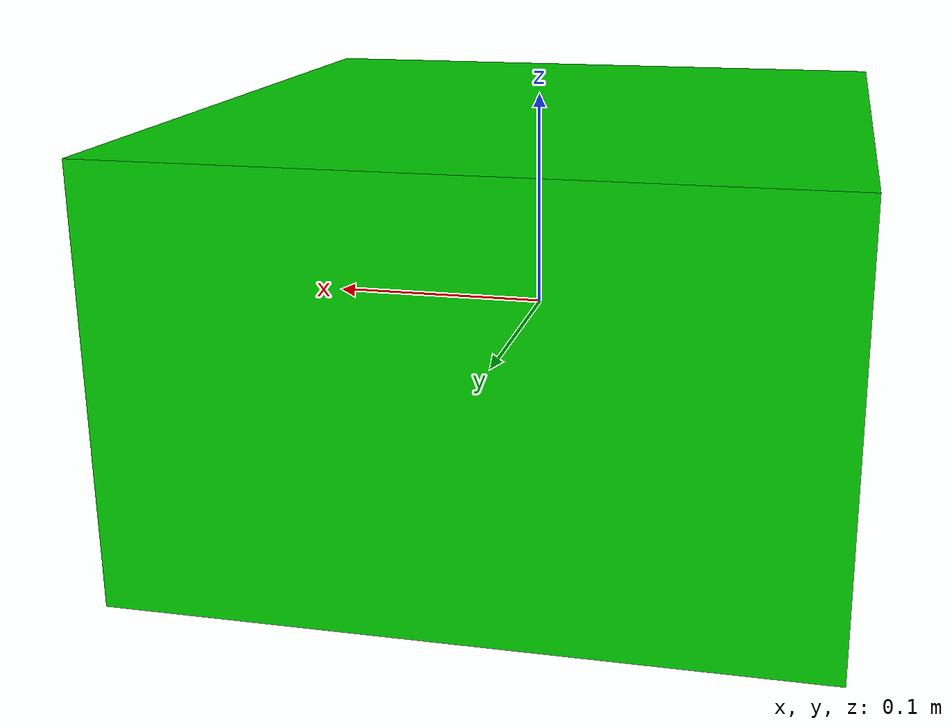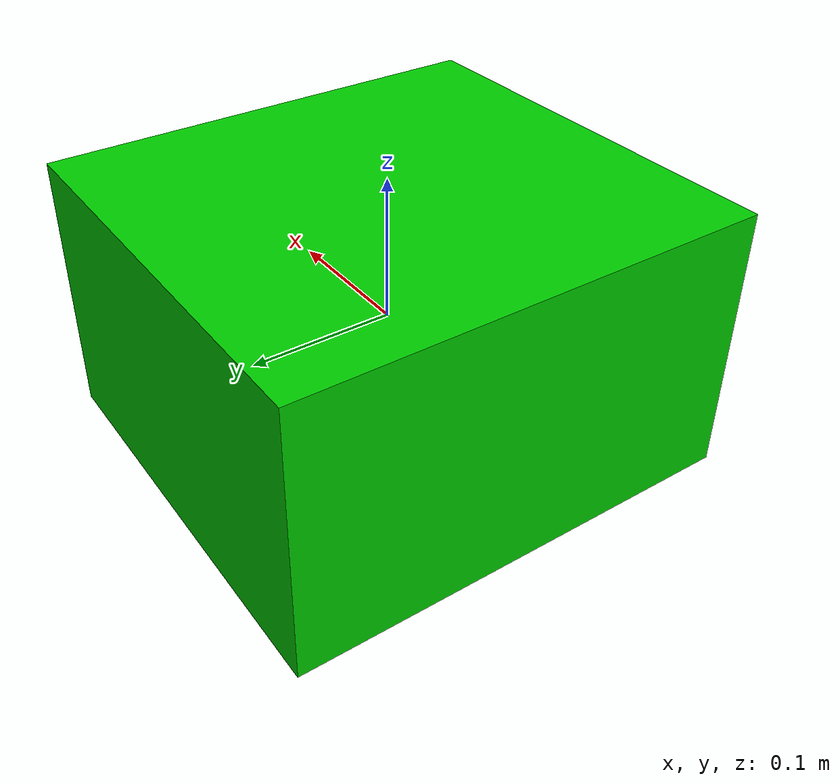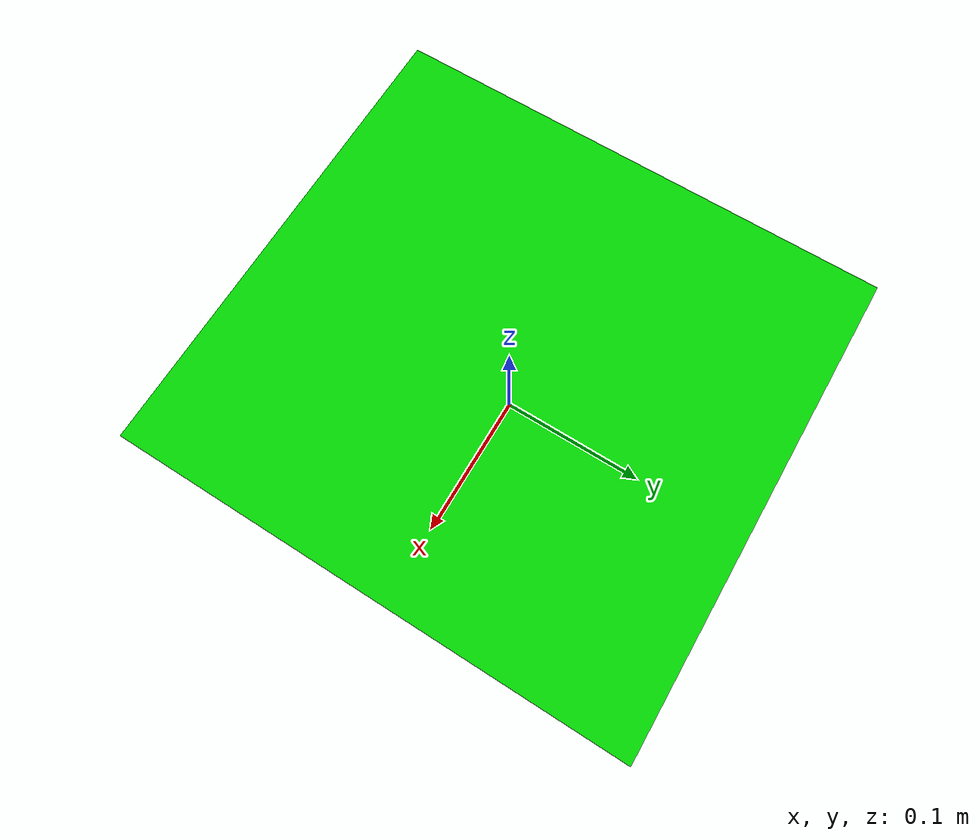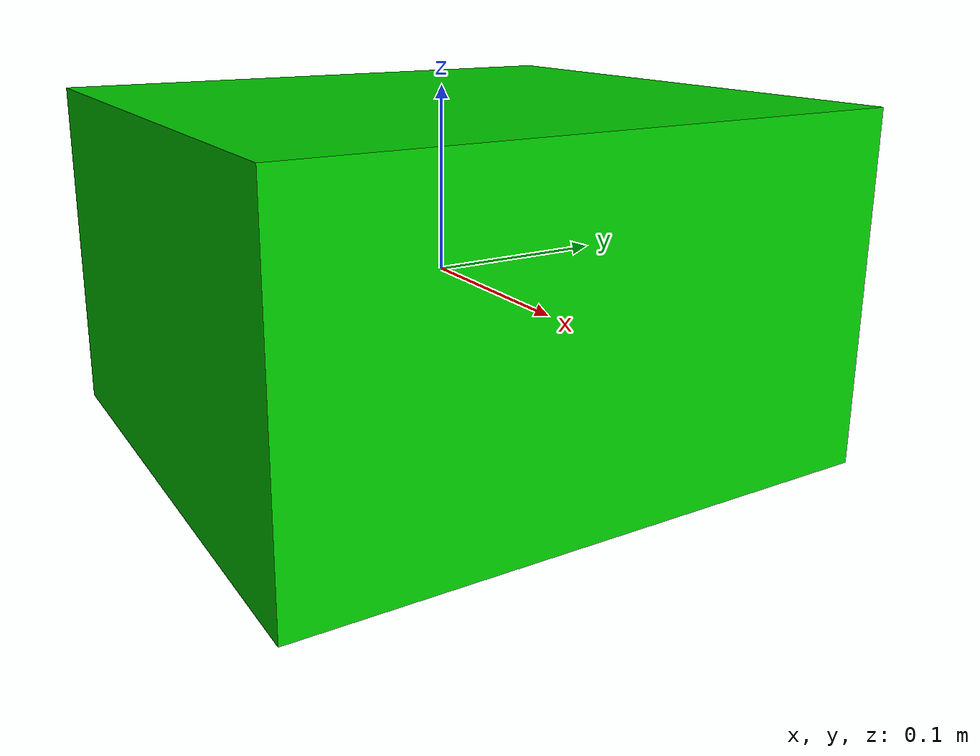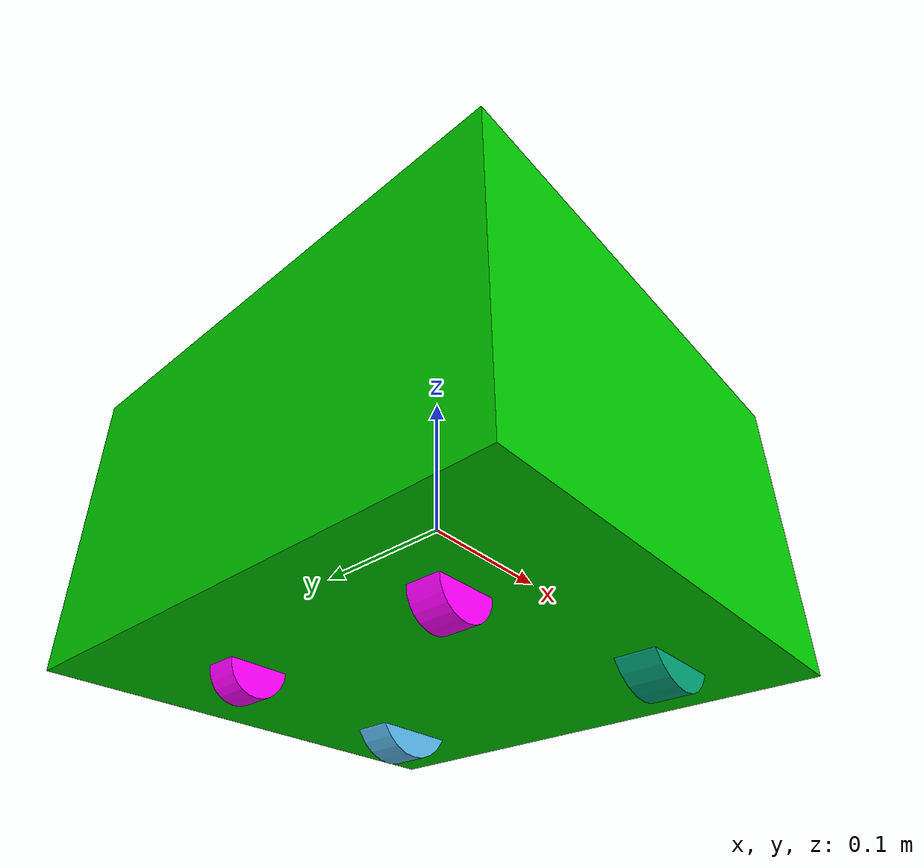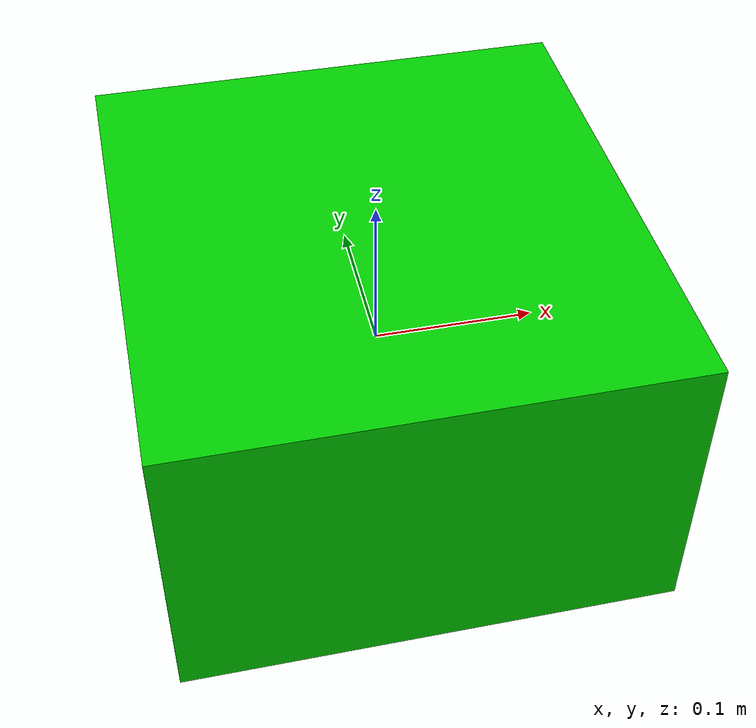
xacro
<?xml version ='1.0'?>
<!-- Author: Eech Hsiao -->
<!-- hsiaoy4@mcmaster.ca -->

<robot name = "robot" xmlns:xacro = "http://www.ros.org/wiki/xacro">

    <xacro:include filename = "$(find macbot_description)/urdf/material.xacro"/>
    <xacro:include filename = "$(find macbot_description)/urdf/robot_textureless.gazebo"/>

    <xacro:property name = "mirror_caster_x"    value = "0.075"     />
    <xacro:property name = "mirror_caster_y"    value = "0.075"     />
    <xacro:property name = "mirror_caster_z"    value = "0.094"     />
    <xacro:property name = "caster_radius"      value = "0.0185"    />
    <xacro:property name = "caster_thickness"   value = "0.02"      />

    <xacro:property name = "mirror_wheel_x"     value = "0.075"     />
    <xacro:property name = "mirror_wheel_y"     value = "0.1"       />
    <xacro:property name = "mirror_wheel_z"     value = "0.079"     />
    <xacro:property name = "wheel_radius"       value = "0.0325"    />
    <xacro:property name = "wheel_thickness"    value = "0.025"     />

    <!-- 0.3 (wide) // 0.322 (long) // 0.188 (height)-->
    <!-- 0.065 (wheel diameter) -->
    <!-- 0.037 (caster diameter) -->

    <!-- LEFT and RIGHT designations taken from POV of Robot -->

    <!-- CHASSIS -->
    <link name = 'base_link'>
        <!-- Giving a little height off the Z axis -->
        <pose>0 0 0.1 0 0 0</pose>

        <inertial>
            <mass value = "15" />       <!-- 20 kgs (arbitrary) -->
            <origin xyz = "0 0 0.1" rpy = "0 0 0" />
            <inertia
                ixx="0.1" ixy="0" ixz="0"
                iyy="0.1" iyz="0"
                izz="0.1"/>
        </inertial>

        <!-- BODY -->
        <collision name = 'base_link_collision'>
            <geometry>
                <box size = "0.3 0.322 0.188"/>
            </geometry>
        </collision>

        <visual name = 'base_link_visual'>
            <origin xyz = "0 0 0" rpy = "0 0 0"/>
            <geometry>
                <box size = "0.3 0.322 0.188"/>
            </geometry>
            <material name = "green"/>
        </visual>

        <!-- LEFT CASTER -->
        <collision name = 'left_caster_collision'>
            <origin xyz ="-${mirror_caster_x} ${mirror_caster_y} -${mirror_caster_z}" rpy = "0 1.5707 1.5707"/>
            <geometry>
                <cylinder radius = "${caster_radius}" length = "${caster_thickness}"/>
            </geometry>

            <surface>
                <friction>
                    <ode>
                        <mu>0</mu>
                        <mu2>0</mu2>
                        <slip1>1.0</slip1>
                        <slip2>1.0</slip2>
                    </ode>
                </friction>
            </surface>
        </collision>

        <visual name = 'left_caster_visual'>
            <origin xyz ="-${mirror_caster_x} ${mirror_caster_y} -${mirror_caster_z}" rpy = "0 1.5707 1.5707"/>
            <geometry>
                <cylinder radius = "${caster_radius}" length = "${caster_thickness}"/>
            </geometry>
            <material name = "magenta"/>
        </visual>

        <!-- RIGHT CASTER -->
        <collision name = 'right_caster_collision'>
            <origin xyz ="-${mirror_caster_x} -${mirror_caster_y} -${mirror_caster_z}" rpy = "0 1.5707 1.5707"/>
            <geometry>
                <cylinder radius = "${caster_radius}" length = "${caster_thickness}"/>
            </geometry>

            <surface>
                <friction>
                    <ode>
                        <mu>0</mu>
                        <mu2>0</mu2>
                        <slip1>1.0</slip1>
                        <slip2>1.0</slip2>
                    </ode>
                </friction>
            </surface>
        </collision>

        <visual name = 'right_caster_visual'>
            <origin xyz ="-${mirror_caster_x} -${mirror_caster_y} -${mirror_caster_z}" rpy = "0 1.5707 1.5707"/>
            <geometry>
                <cylinder radius = "${caster_radius}" length = "${caster_thickness}"/>
            </geometry>
            <material name = "magenta"/>
        </visual>
    </link>

    <!-- LEFT WHEEL -->
    <link name = "left_wheel">
        <inertial>
            <mass value = "10" />
            <origin xyz = "0 0 0" rpy = "0 0 0" />
            <inertia
                ixx = "0.1" ixy = "0" ixz = "0"
                iyy = "0.1" iyz = "0"
                izz = "0.1"/>
        </inertial>

        <collision name = "left_wheel_collision">
            <origin xyz = "0 0 0" rpy = "0 1.5707 1.5707"/>
            <geometry>
                <cylinder radius = "${wheel_radius}" length = "${wheel_thickness}"/>
             </geometry>
        </collision>

        <visual name = "left_wheel_visual">
            <origin xyz = "0 0 0" rpy = "0 1.5707 1.5707"/>
            <geometry>
                <cylinder radius = "${wheel_radius}" length = "${wheel_thickness}"/>
            </geometry>
        </visual>
    </link>

    <!-- RIGHT WHEEL -->
    <link name = "right_wheel">
        <inertial>
            <mass value = "10" />
            <origin xyz = "0 0 0" rpy = "0 0 0" />
            <inertia
                ixx = "0.1" ixy = "0" ixz = "0"
                iyy = "0.1" iyz = "0"
                izz = "0.1"/>
        </inertial>

        <collision name = "right_wheel_collision">
            <origin xyz = "0 0 0" rpy = "0 1.5707 1.5707"/>
            <geometry>
                <cylinder radius = "${wheel_radius}" length = "${wheel_thickness}"/>
             </geometry>
        </collision>

        <visual name = "right_wheel_visual">
            <origin xyz = "0 0 0" rpy = "0 1.5707 1.5707"/>
            <geometry>
                <cylinder radius = "${wheel_radius}" length = "${wheel_thickness}"/>
            </geometry>
        </visual>
    </link>

    <joint type = "continuous" name = "left_wheel_hinge">
        <origin xyz = "${mirror_wheel_x} ${mirror_wheel_y} -${mirror_wheel_z}" rpy = "0 0 0"/>
        <child link = "left_wheel"/>
        <parent link = "base_link"/>
        <axis xyz = "0 1 0" rpy = "0 0 0"/>
        <limit effort = "10000" velocity = "1000"/>
        <joint_properties damping = "1.0" friction = "1.0"/>
    </joint>

    <joint type = "continuous" name = "right_wheel_hinge">
        <origin xyz = "${mirror_wheel_x} -${mirror_wheel_y} -${mirror_wheel_z}" rpy = "0 0 0"/>
        <child link = "right_wheel"/>
        <parent link = "base_link"/>
        <axis xyz = "0 1 0" rpy = "0 0 0"/>
        <limit effort = "10000" velocity = "1000"/>
        <joint_properties damping = "1.0" friction = "1"/>
    </joint>
</robot>

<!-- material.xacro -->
<robot>

    <material name = "green">
        <color rgba = "0.0 0.8 0.0 1.0"/>
    </material>

    <material name = "black">
        <color rgba = "0.0 0.0 0.0 1.0"/>
    </material>

    <material name = "grey">
        <color rgba = "0.2 0.2 0.2 1.0"/>
    </material>

    <material name = "blue">
        <color rgba = "0.0 0.0 0.8 1.0"/>
    </material>

    <material name = "magenta">
        <color rgba = "1.0 0.0 1.0 1.0"/>
    </material>

</robot>
